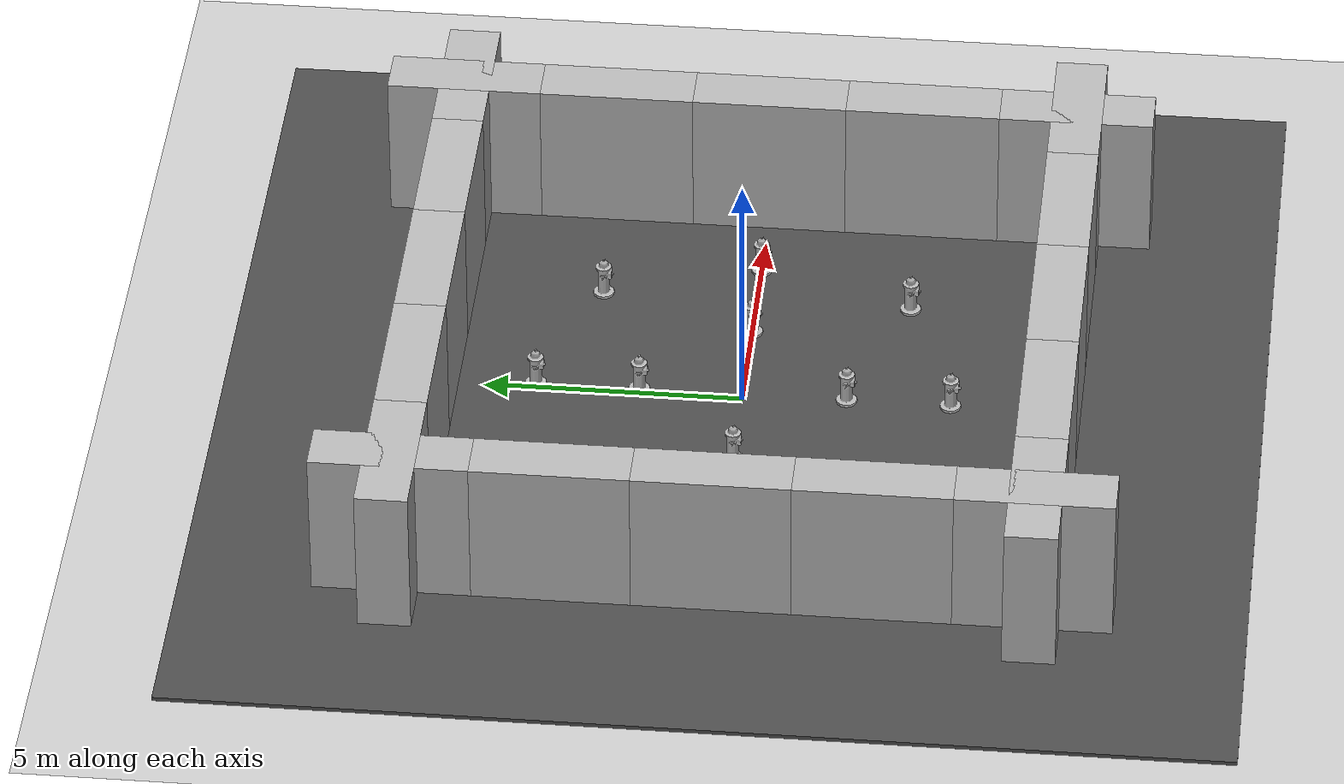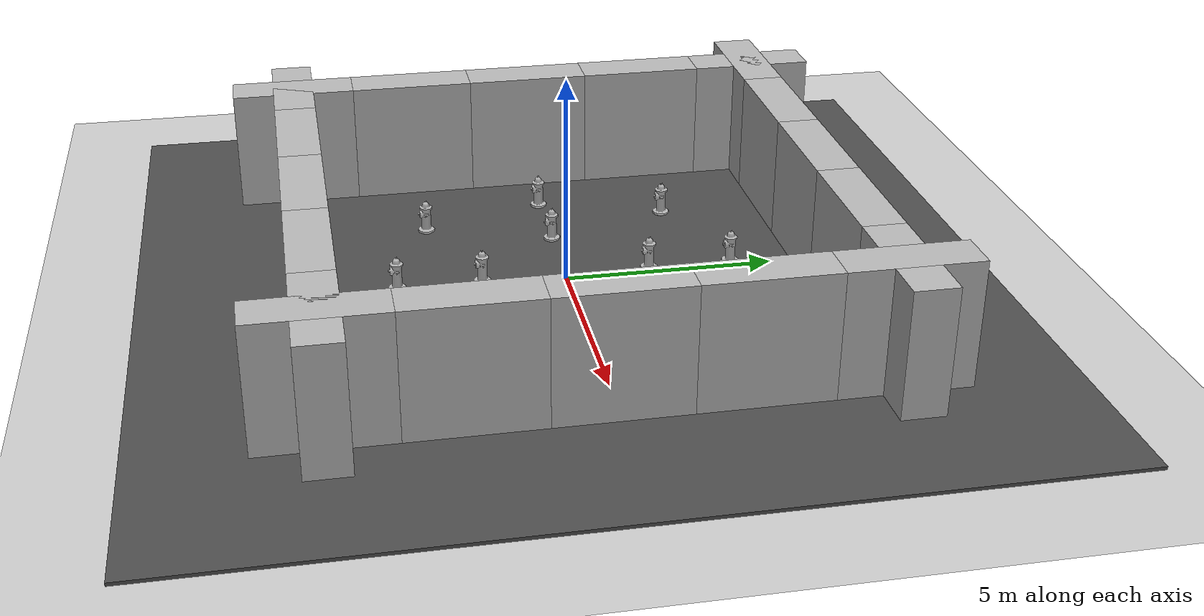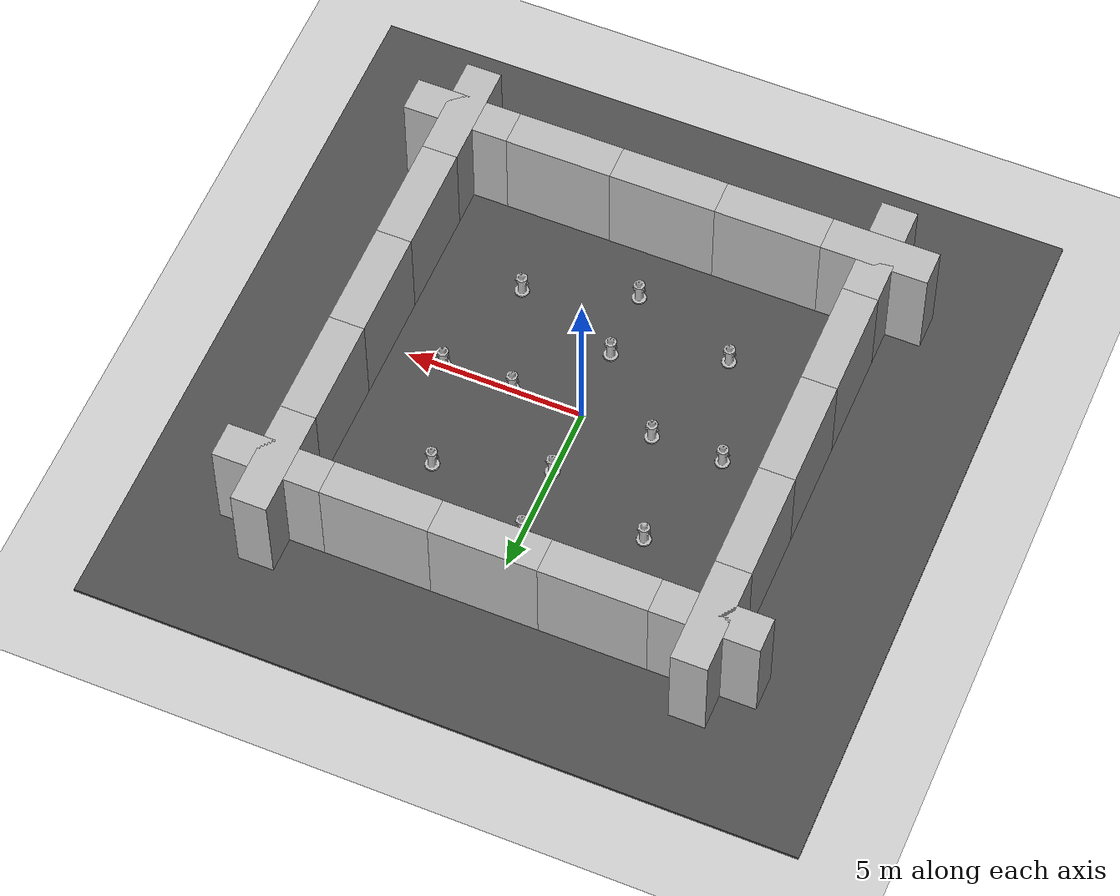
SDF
<sdf version="1.7">
 <world name="default">
  <scene><ambient>0.4 0.4 0.4 1</ambient><background>0.7 0.7 0.7 1</background><shadows>1</shadows></scene>
  <light name="sun" type="directional">
   <pose>0 0 10 0 -0 0</pose>
   <diffuse>0.8 0.8 0.8 1</diffuse>
   <specular>0.2 0.2 0.2 1</specular>
   <attenuation>
    <range>1000</range>
    <constant>0.9</constant>
    <linear>0.01</linear>
    <quadratic>0.001</quadratic>
   </attenuation>
   <direction>-0.5 0.1 -0.9</direction>
   <spot><inner_angle>0</inner_angle><outer_angle>0</outer_angle><falloff>0</falloff></spot>
  </light>
  <model name="ground_plane">
   <static>1</static>
   <link name="link">
    <collision name="collision">
     <geometry><plane><normal>0 0 1</normal><size>100 100</size></plane></geometry>
     <surface>
      <contact><collide_bitmask>65535</collide_bitmask></contact>
      <friction><ode><mu>100</mu><mu2>50</mu2></ode></friction>
     </surface>
    </collision>
    <visual name="visual">
     <cast_shadows>0</cast_shadows>
     <geometry><plane><normal>0 0 1</normal><size>100 100</size></plane></geometry>
     <material>
      <script><uri>file://media/materials/scripts/gazebo.material</uri><name>Gazebo/Grey</name></script>
     </material>
    </visual>
   </link>
  </model>
  <physics type="ode">
   <real_time_update_rate>5000</real_time_update_rate>
   <max_step_size>0.002</max_step_size>
   <real_time_factor>10</real_time_factor>
   <ode>
    <solver>
     <type>quick</type>
     <iters>150</iters>
     <precon_iters>0</precon_iters>
     <sor>1.4</sor>
     <use_dynamic_moi_rescaling>1</use_dynamic_moi_rescaling>
    </solver>
    <constraints>
     <cfm>1e-05</cfm>
     <erp>0.2</erp>
     <contact_max_correcting_vel>2000</contact_max_correcting_vel>
     <contact_surface_layer>0.01</contact_surface_layer>
    </constraints>
   </ode>
  </physics>
  <gravity>0 0 -9.8</gravity>
  <magnetic_field>6e-06 2.3e-05 -4.2e-05</magnetic_field>
  <atmosphere type="adiabatic"/>
  <spherical_coordinates>
   <surface_model>EARTH_WGS84</surface_model>
   <latitude_deg>0</latitude_deg>
   <longitude_deg>0</longitude_deg>
   <elevation>0</elevation>
   <heading_deg>0</heading_deg>
  </spherical_coordinates>
  <model name="asphalt_plane">
   <static>1</static>
   <link name="link">
    <collision name="collision"><geometry><box><size>20 20 0.1</size></box></geometry></collision>
    <visual name="visual">
     <cast_shadows>0</cast_shadows>
     <geometry><box><size>20 20 0.1</size></box></geometry>
     <material>
      <script>
       <uri>model://asphalt_plane/materials/scripts</uri>
       <uri>model://asphalt_plane/materials/textures</uri>
       <name>vrc/asphalt</name>
      </script>
     </material>
    </visual>
   </link>
  </model>
  <model name="brick_box_3x1x3">
   <static>1</static>
   <link name="chassis">
    <pose>0 0 1.5 0 -0 0</pose>
    <collision name="collision"><geometry><box><size>3 1 3</size></box></geometry></collision>
    <visual name="visual">
     <geometry><mesh><uri>model://brick_box_3x1x3/meshes/simple_box.dae</uri><scale>3 1 3</scale></mesh></geometry>
     <material>
      <script>
       <uri>model://brick_box_3x1x3/materials/scripts</uri>
       <uri>model://brick_box_3x1x3/materials/textures</uri>
       <name>BrickBox/Diffuse</name>
      </script>
     </material>
    </visual>
   </link>
   <pose>0 6 0 0 -0 0</pose>
  </model>
  <model name="brick_box_3x1x3_clone">
   <static>1</static>
   <link name="chassis">
    <pose>0 0 1.5 0 -0 0</pose>
    <collision name="collision"><geometry><box><size>3 1 3</size></box></geometry></collision>
    <visual name="visual">
     <geometry><mesh><uri>model://brick_box_3x1x3/meshes/simple_box.dae</uri><scale>3 1 3</scale></mesh></geometry>
     <material>
      <script>
       <uri>model://brick_box_3x1x3/materials/scripts</uri>
       <uri>model://brick_box_3x1x3/materials/textures</uri>
       <name>BrickBox/Diffuse</name>
      </script>
     </material>
    </visual>
   </link>
   <pose>3 6 0 0 -0 0</pose>
  </model>
  <model name="brick_box_3x1x3_clone_0">
   <static>1</static>
   <link name="chassis">
    <pose>0 0 1.5 0 -0 0</pose>
    <collision name="collision"><geometry><box><size>3 1 3</size></box></geometry></collision>
    <visual name="visual">
     <geometry><mesh><uri>model://brick_box_3x1x3/meshes/simple_box.dae</uri><scale>3 1 3</scale></mesh></geometry>
     <material>
      <script>
       <uri>model://brick_box_3x1x3/materials/scripts</uri>
       <uri>model://brick_box_3x1x3/materials/textures</uri>
       <name>BrickBox/Diffuse</name>
      </script>
     </material>
    </visual>
   </link>
   <pose>6 6 0 0 -0 0</pose>
  </model>
  <model name="brick_box_3x1x3_clone_1">
   <static>1</static>
   <link name="chassis">
    <pose>0 0 1.5 0 -0 0</pose>
    <collision name="collision"><geometry><box><size>3 1 3</size></box></geometry></collision>
    <visual name="visual">
     <geometry><mesh><uri>model://brick_box_3x1x3/meshes/simple_box.dae</uri><scale>3 1 3</scale></mesh></geometry>
     <material>
      <script>
       <uri>model://brick_box_3x1x3/materials/scripts</uri>
       <uri>model://brick_box_3x1x3/materials/textures</uri>
       <name>BrickBox/Diffuse</name>
      </script>
     </material>
    </visual>
   </link>
   <pose>-3 6 0 0 -0 0</pose>
  </model>
  <model name="brick_box_3x1x3_clone_2">
   <static>1</static>
   <link name="chassis">
    <pose>0 0 1.5 0 -0 0</pose>
    <collision name="collision"><geometry><box><size>3 1 3</size></box></geometry></collision>
    <visual name="visual">
     <geometry><mesh><uri>model://brick_box_3x1x3/meshes/simple_box.dae</uri><scale>3 1 3</scale></mesh></geometry>
     <material>
      <script>
       <uri>model://brick_box_3x1x3/materials/scripts</uri>
       <uri>model://brick_box_3x1x3/materials/textures</uri>
       <name>BrickBox/Diffuse</name>
      </script>
     </material>
    </visual>
   </link>
   <pose>-6 6 0 0 -0 0</pose>
  </model>
  <model name="brick_box_3x1x3_0_clone">
   <static>1</static>
   <link name="chassis">
    <pose>0 0 1.5 0 -0 0</pose>
    <collision name="collision"><geometry><box><size>3 1 3</size></box></geometry></collision>
    <visual name="visual">
     <geometry><mesh><uri>model://brick_box_3x1x3/meshes/simple_box.dae</uri><scale>3 1 3</scale></mesh></geometry>
     <material>
      <script>
       <uri>model://brick_box_3x1x3/materials/scripts</uri>
       <uri>model://brick_box_3x1x3/materials/textures</uri>
       <name>BrickBox/Diffuse</name>
      </script>
     </material>
    </visual>
   </link>
   <pose>6 -3 0 0 -0 1.5708</pose>
  </model>
  <model name="brick_box_3x1x3_0_clone_0">
   <static>1</static>
   <link name="chassis">
    <pose>0 0 1.5 0 -0 0</pose>
    <collision name="collision"><geometry><box><size>3 1 3</size></box></geometry></collision>
    <visual name="visual">
     <geometry><mesh><uri>model://brick_box_3x1x3/meshes/simple_box.dae</uri><scale>3 1 3</scale></mesh></geometry>
     <material>
      <script>
       <uri>model://brick_box_3x1x3/materials/scripts</uri>
       <uri>model://brick_box_3x1x3/materials/textures</uri>
       <name>BrickBox/Diffuse</name>
      </script>
     </material>
    </visual>
   </link>
   <pose>6 -6 0 0 -0 1.5708</pose>
  </model>
  <model name="brick_box_3x1x3_0_clone_1">
   <static>1</static>
   <link name="chassis">
    <pose>0 0 1.5 0 -0 0</pose>
    <collision name="collision"><geometry><box><size>3 1 3</size></box></geometry></collision>
    <visual name="visual">
     <geometry><mesh><uri>model://brick_box_3x1x3/meshes/simple_box.dae</uri><scale>3 1 3</scale></mesh></geometry>
     <material>
      <script>
       <uri>model://brick_box_3x1x3/materials/scripts</uri>
       <uri>model://brick_box_3x1x3/materials/textures</uri>
       <name>BrickBox/Diffuse</name>
      </script>
     </material>
    </visual>
   </link>
   <pose>6 3 0 0 -0 1.5708</pose>
  </model>
  <model name="brick_box_3x1x3_0_clone_2">
   <static>1</static>
   <link name="chassis">
    <pose>0 0 1.5 0 -0 0</pose>
    <collision name="collision"><geometry><box><size>3 1 3</size></box></geometry></collision>
    <visual name="visual">
     <geometry><mesh><uri>model://brick_box_3x1x3/meshes/simple_box.dae</uri><scale>3 1 3</scale></mesh></geometry>
     <material>
      <script>
       <uri>model://brick_box_3x1x3/materials/scripts</uri>
       <uri>model://brick_box_3x1x3/materials/textures</uri>
       <name>BrickBox/Diffuse</name>
      </script>
     </material>
    </visual>
   </link>
   <pose>6 6 0 0 -0 1.5708</pose>
  </model>
  <model name="brick_box_3x1x3_0_clone_clone">
   <static>1</static>
   <link name="chassis">
    <pose>0 0 1.5 0 -0 0</pose>
    <collision name="collision"><geometry><box><size>3 1 3</size></box></geometry></collision>
    <visual name="visual">
     <geometry><mesh><uri>model://brick_box_3x1x3/meshes/simple_box.dae</uri><scale>3 1 3</scale></mesh></geometry>
     <material>
      <script>
       <uri>model://brick_box_3x1x3/materials/scripts</uri>
       <uri>model://brick_box_3x1x3/materials/textures</uri>
       <name>BrickBox/Diffuse</name>
      </script>
     </material>
    </visual>
   </link>
   <pose>6 0 0 0 -0 1.5708</pose>
  </model>
  <model name="brick_box_3x1x3_0_clone_3">
   <static>1</static>
   <link name="chassis">
    <pose>0 0 1.5 0 -0 0</pose>
    <collision name="collision"><geometry><box><size>3 1 3</size></box></geometry></collision>
    <visual name="visual">
     <geometry><mesh><uri>model://brick_box_3x1x3/meshes/simple_box.dae</uri><scale>3 1 3</scale></mesh></geometry>
     <material>
      <script>
       <uri>model://brick_box_3x1x3/materials/scripts</uri>
       <uri>model://brick_box_3x1x3/materials/textures</uri>
       <name>BrickBox/Diffuse</name>
      </script>
     </material>
    </visual>
   </link>
   <pose>-3 -6 0 0 -0 0</pose>
  </model>
  <model name="brick_box_3x1x3_0_clone_4">
   <static>1</static>
   <link name="chassis">
    <pose>0 0 1.5 0 -0 0</pose>
    <collision name="collision"><geometry><box><size>3 1 3</size></box></geometry></collision>
    <visual name="visual">
     <geometry><mesh><uri>model://brick_box_3x1x3/meshes/simple_box.dae</uri><scale>3 1 3</scale></mesh></geometry>
     <material>
      <script>
       <uri>model://brick_box_3x1x3/materials/scripts</uri>
       <uri>model://brick_box_3x1x3/materials/textures</uri>
       <name>BrickBox/Diffuse</name>
      </script>
     </material>
    </visual>
   </link>
   <pose>-6 -6 0 0 -0 0</pose>
  </model>
  <model name="brick_box_3x1x3_0_clone_5">
   <static>1</static>
   <link name="chassis">
    <pose>0 0 1.5 0 -0 0</pose>
    <collision name="collision"><geometry><box><size>3 1 3</size></box></geometry></collision>
    <visual name="visual">
     <geometry><mesh><uri>model://brick_box_3x1x3/meshes/simple_box.dae</uri><scale>3 1 3</scale></mesh></geometry>
     <material>
      <script>
       <uri>model://brick_box_3x1x3/materials/scripts</uri>
       <uri>model://brick_box_3x1x3/materials/textures</uri>
       <name>BrickBox/Diffuse</name>
      </script>
     </material>
    </visual>
   </link>
   <pose>3 -6 0 0 -0 0</pose>
  </model>
  <model name="brick_box_3x1x3_0_clone_6">
   <static>1</static>
   <link name="chassis">
    <pose>0 0 1.5 0 -0 0</pose>
    <collision name="collision"><geometry><box><size>3 1 3</size></box></geometry></collision>
    <visual name="visual">
     <geometry><mesh><uri>model://brick_box_3x1x3/meshes/simple_box.dae</uri><scale>3 1 3</scale></mesh></geometry>
     <material>
      <script>
       <uri>model://brick_box_3x1x3/materials/scripts</uri>
       <uri>model://brick_box_3x1x3/materials/textures</uri>
       <name>BrickBox/Diffuse</name>
      </script>
     </material>
    </visual>
   </link>
   <pose>6 -6 0 0 -0 0</pose>
  </model>
  <model name="brick_box_3x1x3_0_clone_3_clone">
   <static>1</static>
   <link name="chassis">
    <pose>0 0 1.5 0 -0 0</pose>
    <collision name="collision"><geometry><box><size>3 1 3</size></box></geometry></collision>
    <visual name="visual">
     <geometry><mesh><uri>model://brick_box_3x1x3/meshes/simple_box.dae</uri><scale>3 1 3</scale></mesh></geometry>
     <material>
      <script>
       <uri>model://brick_box_3x1x3/materials/scripts</uri>
       <uri>model://brick_box_3x1x3/materials/textures</uri>
       <name>BrickBox/Diffuse</name>
      </script>
     </material>
    </visual>
   </link>
   <pose>0 -6 0 0 -0 0</pose>
  </model>
  <model name="brick_box_3x1x3_0_clone_7">
   <static>1</static>
   <link name="chassis">
    <pose>0 0 1.5 0 -0 0</pose>
    <collision name="collision"><geometry><box><size>3 1 3</size></box></geometry></collision>
    <visual name="visual">
     <geometry><mesh><uri>model://brick_box_3x1x3/meshes/simple_box.dae</uri><scale>3 1 3</scale></mesh></geometry>
     <material>
      <script>
       <uri>model://brick_box_3x1x3/materials/scripts</uri>
       <uri>model://brick_box_3x1x3/materials/textures</uri>
       <name>BrickBox/Diffuse</name>
      </script>
     </material>
    </visual>
   </link>
   <pose>-6 3 0 0 -0 1.5708</pose>
  </model>
  <model name="brick_box_3x1x3_0_clone_8">
   <static>1</static>
   <link name="chassis">
    <pose>0 0 1.5 0 -0 0</pose>
    <collision name="collision"><geometry><box><size>3 1 3</size></box></geometry></collision>
    <visual name="visual">
     <geometry><mesh><uri>model://brick_box_3x1x3/meshes/simple_box.dae</uri><scale>3 1 3</scale></mesh></geometry>
     <material>
      <script>
       <uri>model://brick_box_3x1x3/materials/scripts</uri>
       <uri>model://brick_box_3x1x3/materials/textures</uri>
       <name>BrickBox/Diffuse</name>
      </script>
     </material>
    </visual>
   </link>
   <pose>-6 6 0 0 -0 1.5708</pose>
  </model>
  <model name="brick_box_3x1x3_0_clone_9">
   <static>1</static>
   <link name="chassis">
    <pose>0 0 1.5 0 -0 0</pose>
    <collision name="collision"><geometry><box><size>3 1 3</size></box></geometry></collision>
    <visual name="visual">
     <geometry><mesh><uri>model://brick_box_3x1x3/meshes/simple_box.dae</uri><scale>3 1 3</scale></mesh></geometry>
     <material>
      <script>
       <uri>model://brick_box_3x1x3/materials/scripts</uri>
       <uri>model://brick_box_3x1x3/materials/textures</uri>
       <name>BrickBox/Diffuse</name>
      </script>
     </material>
    </visual>
   </link>
   <pose>-6 -3 0 0 -0 1.5708</pose>
  </model>
  <model name="brick_box_3x1x3_0_clone_10">
   <static>1</static>
   <link name="chassis">
    <pose>0 0 1.5 0 -0 0</pose>
    <collision name="collision"><geometry><box><size>3 1 3</size></box></geometry></collision>
    <visual name="visual">
     <geometry><mesh><uri>model://brick_box_3x1x3/meshes/simple_box.dae</uri><scale>3 1 3</scale></mesh></geometry>
     <material>
      <script>
       <uri>model://brick_box_3x1x3/materials/scripts</uri>
       <uri>model://brick_box_3x1x3/materials/textures</uri>
       <name>BrickBox/Diffuse</name>
      </script>
     </material>
    </visual>
   </link>
   <pose>-6 -6 0 0 -0 1.5708</pose>
  </model>
  <model name="brick_box_3x1x3_0_clone_7_clone">
   <static>1</static>
   <link name="chassis">
    <pose>0 0 1.5 0 -0 0</pose>
    <collision name="collision"><geometry><box><size>3 1 3</size></box></geometry></collision>
    <visual name="visual">
     <geometry><mesh><uri>model://brick_box_3x1x3/meshes/simple_box.dae</uri><scale>3 1 3</scale></mesh></geometry>
     <material>
      <script>
       <uri>model://brick_box_3x1x3/materials/scripts</uri>
       <uri>model://brick_box_3x1x3/materials/textures</uri>
       <name>BrickBox/Diffuse</name>
      </script>
     </material>
    </visual>
   </link>
   <pose>-6 0 0 0 -0 1.5708</pose>
  </model>
  <model name="fire_hydrant">
   <static>1</static>
   <link name="link">
    <collision name="collision">
     <geometry><mesh><uri>model://fire_hydrant/meshes/fire_hydrant.dae</uri></mesh></geometry>
    </collision>
    <visual name="visual">
     <geometry><mesh><uri>model://fire_hydrant/meshes/fire_hydrant.dae</uri></mesh></geometry>
    </visual>
   </link>
   <pose>2 0 0 0 -0 0</pose>
  </model>
  <model name="fire_hydrant_clone">
   <static>1</static>
   <link name="link">
    <collision name="collision">
     <geometry><mesh><uri>model://fire_hydrant/meshes/fire_hydrant.dae</uri></mesh></geometry>
    </collision>
    <visual name="visual">
     <geometry><mesh><uri>model://fire_hydrant/meshes/fire_hydrant.dae</uri></mesh></geometry>
    </visual>
   </link>
   <pose>0 2 0 0 -0 0</pose>
  </model>
  <model name="fire_hydrant_clone_0">
   <static>1</static>
   <link name="link">
    <collision name="collision">
     <geometry><mesh><uri>model://fire_hydrant/meshes/fire_hydrant.dae</uri></mesh></geometry>
    </collision>
    <visual name="visual">
     <geometry><mesh><uri>model://fire_hydrant/meshes/fire_hydrant.dae</uri></mesh></geometry>
    </visual>
   </link>
   <pose>-2 0 0 0 -0 0</pose>
  </model>
  <model name="fire_hydrant_clone_1">
   <static>1</static>
   <link name="link">
    <collision name="collision">
     <geometry><mesh><uri>model://fire_hydrant/meshes/fire_hydrant.dae</uri></mesh></geometry>
    </collision>
    <visual name="visual">
     <geometry><mesh><uri>model://fire_hydrant/meshes/fire_hydrant.dae</uri></mesh></geometry>
    </visual>
   </link>
   <pose>0 -2 0 0 -0 0</pose>
  </model>
  <model name="fire_hydrant_clone_2">
   <static>1</static>
   <link name="link">
    <collision name="collision">
     <geometry><mesh><uri>model://fire_hydrant/meshes/fire_hydrant.dae</uri></mesh></geometry>
    </collision>
    <visual name="visual">
     <geometry><mesh><uri>model://fire_hydrant/meshes/fire_hydrant.dae</uri></mesh></geometry>
    </visual>
   </link>
   <pose>3 -3 0 0 -0 0</pose>
  </model>
  <model name="fire_hydrant_clone_3">
   <static>1</static>
   <link name="link">
    <collision name="collision">
     <geometry><mesh><uri>model://fire_hydrant/meshes/fire_hydrant.dae</uri></mesh></geometry>
    </collision>
    <visual name="visual">
     <geometry><mesh><uri>model://fire_hydrant/meshes/fire_hydrant.dae</uri></mesh></geometry>
    </visual>
   </link>
   <pose>3 3 0 0 -0 0</pose>
  </model>
  <model name="fire_hydrant_clone_4">
   <static>1</static>
   <link name="link">
    <collision name="collision">
     <geometry><mesh><uri>model://fire_hydrant/meshes/fire_hydrant.dae</uri></mesh></geometry>
    </collision>
    <visual name="visual">
     <geometry><mesh><uri>model://fire_hydrant/meshes/fire_hydrant.dae</uri></mesh></geometry>
    </visual>
   </link>
   <pose>-3 3 0 0 -0 0</pose>
  </model>
  <model name="fire_hydrant_clone_5">
   <static>1</static>
   <link name="link">
    <collision name="collision">
     <geometry><mesh><uri>model://fire_hydrant/meshes/fire_hydrant.dae</uri></mesh></geometry>
    </collision>
    <visual name="visual">
     <geometry><mesh><uri>model://fire_hydrant/meshes/fire_hydrant.dae</uri></mesh></geometry>
    </visual>
   </link>
   <pose>-3 -3 0 0 -0 0</pose>
  </model>
  <model name="fire_hydrant_clone_6">
   <static>1</static>
   <link name="link">
    <collision name="collision">
     <geometry><mesh><uri>model://fire_hydrant/meshes/fire_hydrant.dae</uri></mesh></geometry>
    </collision>
    <visual name="visual">
     <geometry><mesh><uri>model://fire_hydrant/meshes/fire_hydrant.dae</uri></mesh></geometry>
    </visual>
   </link>
   <pose>-4 0 0 0 -0 0</pose>
  </model>
  <model name="fire_hydrant_clone_7">
   <static>1</static>
   <link name="link">
    <collision name="collision">
     <geometry><mesh><uri>model://fire_hydrant/meshes/fire_hydrant.dae</uri></mesh></geometry>
    </collision>
    <visual name="visual">
     <geometry><mesh><uri>model://fire_hydrant/meshes/fire_hydrant.dae</uri></mesh></geometry>
    </visual>
   </link>
   <pose>4 0 0 0 -0 0</pose>
  </model>
  <model name="fire_hydrant_clone_8">
   <static>1</static>
   <link name="link">
    <collision name="collision">
     <geometry><mesh><uri>model://fire_hydrant/meshes/fire_hydrant.dae</uri></mesh></geometry>
    </collision>
    <visual name="visual">
     <geometry><mesh><uri>model://fire_hydrant/meshes/fire_hydrant.dae</uri></mesh></geometry>
    </visual>
   </link>
   <pose>0 4 0 0 -0 0</pose>
  </model>
  <model name="fire_hydrant_clone_9">
   <static>1</static>
   <link name="link">
    <collision name="collision">
     <geometry><mesh><uri>model://fire_hydrant/meshes/fire_hydrant.dae</uri></mesh></geometry>
    </collision>
    <visual name="visual">
     <geometry><mesh><uri>model://fire_hydrant/meshes/fire_hydrant.dae</uri></mesh></geometry>
    </visual>
   </link>
   <pose>0 -4 0 0 -0 0</pose>
  </model>
 </world>
</sdf>
